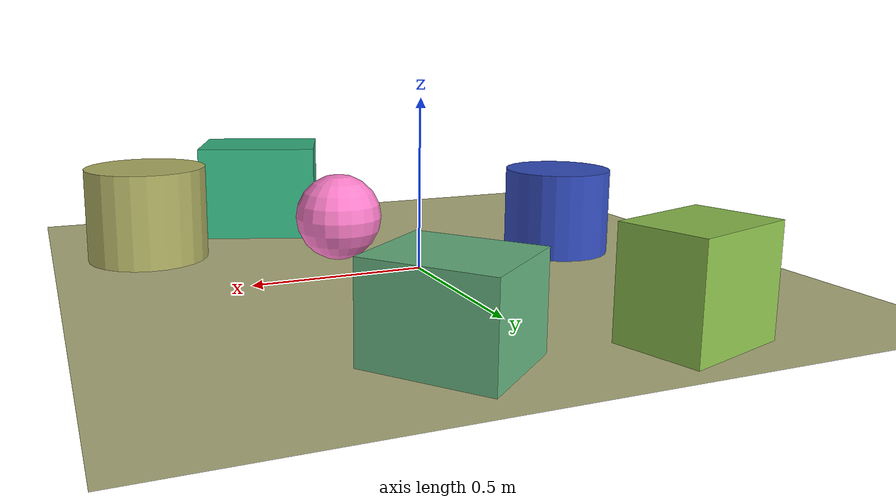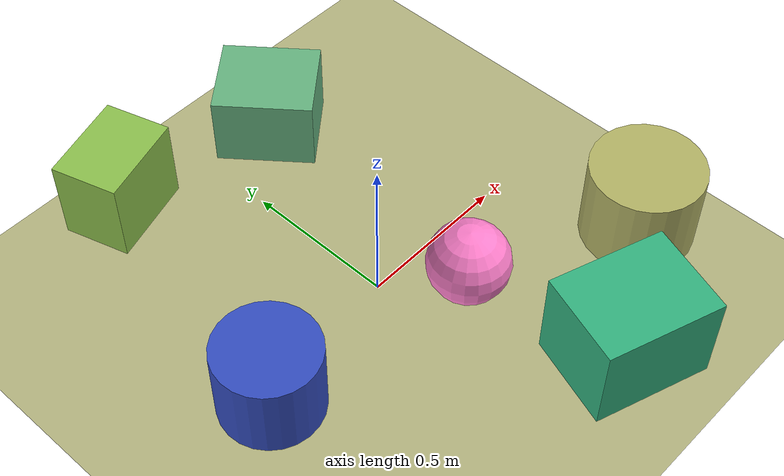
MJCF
<mujoco>
   <asset>
<texture type="skybox" builtin="gradient" rgb1="0.6 0.7 0.1" rgb2="0.9 0.7 0.9" width="256" height="256"/>
<texture name="checker_0" builtin="checker" rgb1="0.3 0.6 1.0" rgb2="0.1 0.0 0.5" width="200" height="200"/>
<texture name="flat_1" builtin="flat" rgb1="0.7 0.7 0.4" rgb2="0.7 0.7 0.4"  width="200" height="200"/>
<texture name="flat_2" builtin="flat" rgb1="0.2 0.7 0.5" rgb2="0.2 0.7 0.5"  width="200" height="200"/>
<texture name="flat_3" builtin="flat" rgb1="0.4 0.7 0.5" rgb2="0.4 0.7 0.5"  width="200" height="200"/>
<texture name="gradient_4" builtin="gradient" rgb1="0.4 0.9 0.4" rgb2="0.7 0.6 0.2" width="200" height="200"/>
<texture name="flat_5" builtin="flat" rgb1="1.0 0.5 0.8" rgb2="1.0 0.5 0.8"  width="200" height="200"/><material name="checker_0_mat" reflectance="0" texrepeat="6 6" texture="checker_0" texuniform="false" />
<material name="flat_1_mat" reflectance="0" texture="flat_1" texuniform="true"/>
<material name="flat_2_mat" reflectance="0" texture="flat_2" texuniform="true"/>
<material name="flat_3_mat" reflectance="0" texture="flat_3" texuniform="true"/>
<material name="gradient_4_mat" reflectance="0" texture="gradient_4" texuniform="true"/>
<material name="flat_5_mat" reflectance="0" texture="flat_5" texuniform="true"/>
   </asset>

   <worldbody>
      <light diffuse=".9 .9 .9" pos="0 0 3" dir="0 0 -1"/>
     <geom type="plane" size="1 1 0.1" rgba="0.7 0.7 0.5 1"/>
<geom type="cylinder" pos="-0.5 -0.06 0.13" size="0.16 0.13 0.13" material="checker_0_mat" euler="0 0 27" />
<geom type="cylinder" pos="0.72 -0.43 0.14" size="0.18 0.14 0.14" material="flat_1_mat" euler="0 0 54" />
<geom type="box" pos="0.3 -0.69 0.15" size="0.15 0.19 0.15" material="flat_2_mat" euler="0 0 71" />
<geom type="box" pos="0.24 0.71 0.12" size="0.14 0.16 0.12" material="flat_3_mat" euler="0 0 39" />
<geom type="box" pos="-0.32 0.8 0.14" size="0.15 0.11 0.14" material="gradient_4_mat" euler="0 0 17" />
<geom type="sphere" pos="0.18 -0.2 0.13" size="0.13 0.13 0.13" material="flat_5_mat" euler="0 0 71" /><camera euler="60 0 180" fovy="60" name="camera1" pos="-0.2 -1.5 1"></camera>   </worldbody>
</mujoco>
